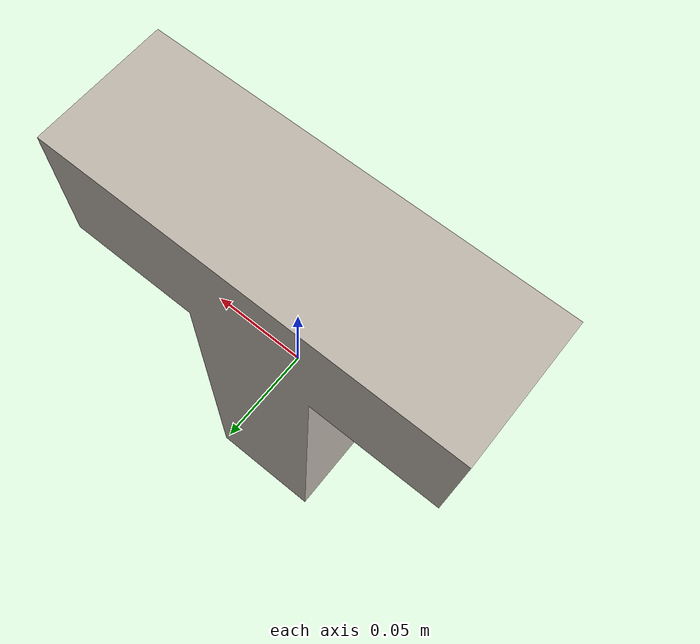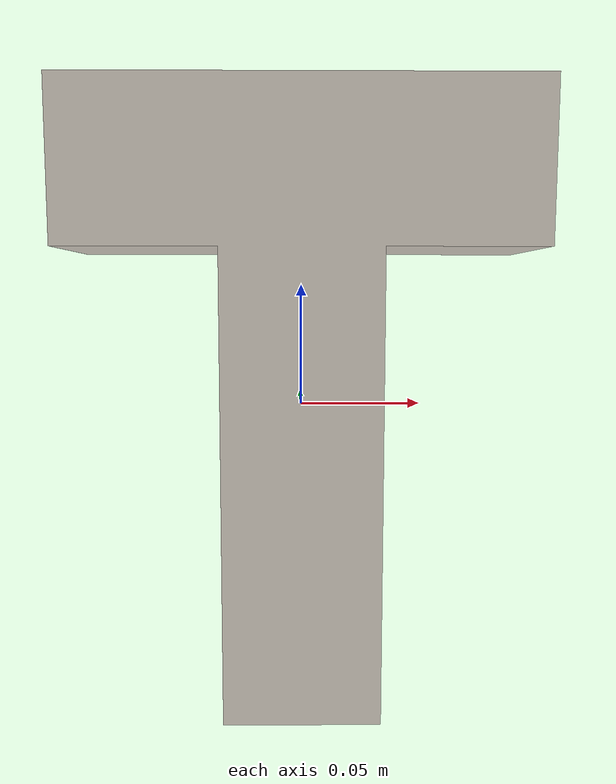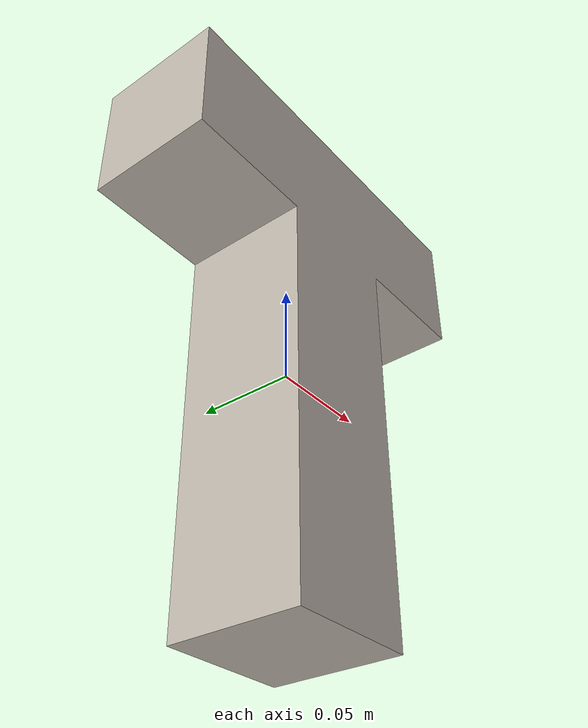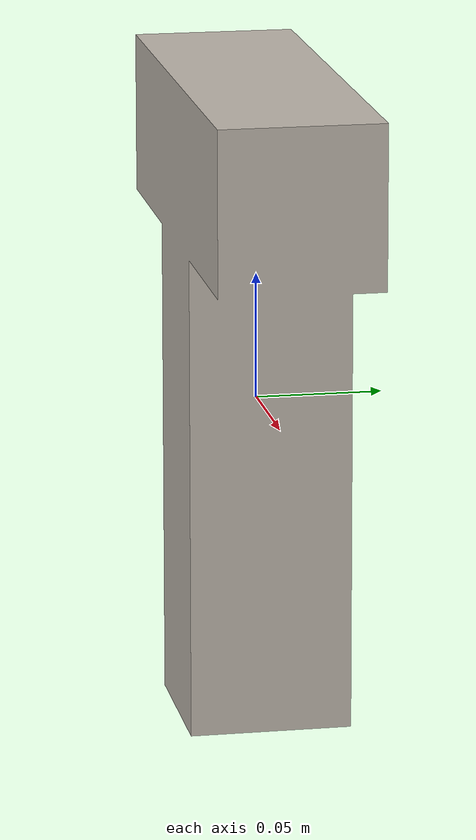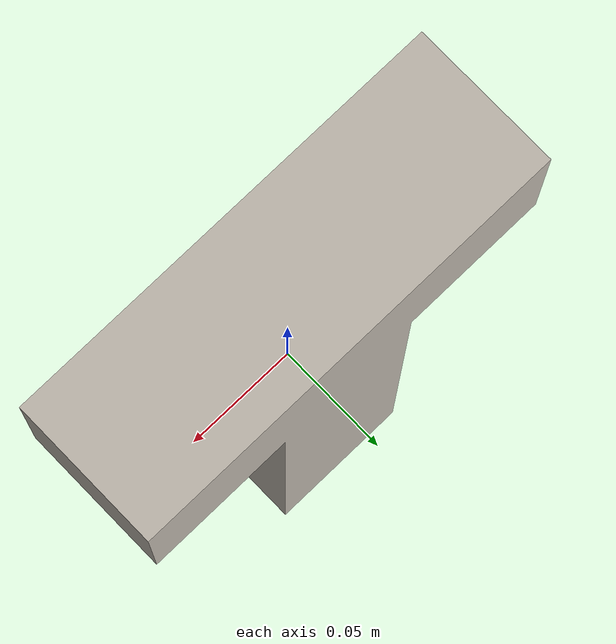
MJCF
<?xml version="1.0" encoding="UTF-8"?>
<mujoco model="aprilcube_voxel_target">
  <!-- Bounding box: 192 x 64 x 256 mm -->
  <!-- Origin at target center, units in meters -->

  <compiler angle="radian" meshdir="."/>

  <asset>
    <texture name="cube_tex" type="2d" file="cube_atlas.png"/>
    <material name="cube_mat" texture="cube_tex" specular="0.1" shininess="0.1"/>
    <mesh name="cube_mesh" file="cube.obj"/>
  </asset>

  <worldbody>
    <body name="cube" pos="0 0 0">
      <freejoint name="cube_joint"/>
      <geom name="cube_visual" type="mesh" mesh="cube_mesh" material="cube_mat" contype="0" conaffinity="0" group="1" density="0"/>
      <geom name="stem_collision" type="box" pos="0.000000 0.000000 0.000000" size="0.032000 0.032000 0.128000" density="1250" rgba="0.5 0.5 0.5 0" contype="1" conaffinity="1" group="2"/>
      <geom name="crossbar_collision" type="box" pos="0.000000 0.000000 0.096000" size="0.096000 0.032000 0.032000" density="1250" rgba="0.5 0.5 0.5 0" contype="1" conaffinity="1" group="2"/>
      <site name="cube_center" pos="0 0 0" size="0.001"/>
    </body>
  </worldbody>
</mujoco>
